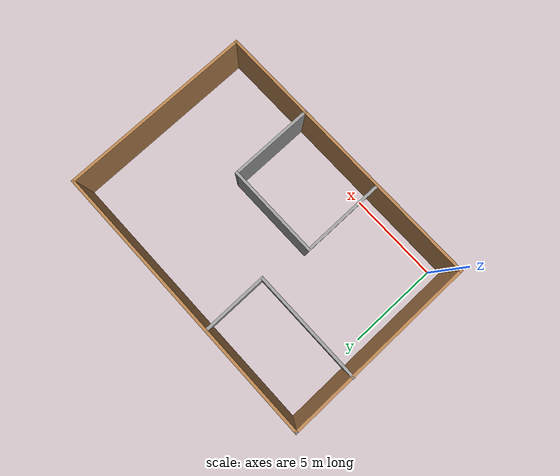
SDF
<?xml version='1.0'?>
<sdf version='1.6'>
  <model name='sparse_house'>
    <pose frame=''>7.23525 4.75 0 0 -0 0</pose>
    <link name='Wall_0'>
      <collision name='Wall_0_Collision'>
        <geometry>
          <box>
            <size>15.65 0.15 2.5</size>
          </box>
        </geometry>
        <pose frame=''>0 0 1.25 0 -0 0</pose>
      </collision>
      <visual name='Wall_0_Visual'>
        <pose frame=''>0 0 1.25 0 -0 0</pose>
        <geometry>
          <box>
            <size>15.65 0.15 2.5</size>
          </box>
        </geometry>
        <material>
          <script>
            <uri>file://media/materials/scripts/gazebo.material</uri>
            <name>Gazebo/Wood</name>
          </script>
          <ambient>1 1 1 1</ambient>
        </material>
        <meta>
          <layer>0</layer>
        </meta>
      </visual>
      <pose frame=''>0.014747 5.25 0 0 -0 0</pose>
    </link>
    <link name='Wall_1'>
      <collision name='Wall_1_Collision'>
        <geometry>
          <box>
            <size>10.65 0.15 2.5</size>
          </box>
        </geometry>
        <pose frame=''>0 0 1.25 0 -0 0</pose>
      </collision>
      <visual name='Wall_1_Visual'>
        <pose frame=''>0 0 1.25 0 -0 0</pose>
        <geometry>
          <box>
            <size>10.65 0.15 2.5</size>
          </box>
        </geometry>
        <material>
          <script>
            <uri>file://media/materials/scripts/gazebo.material</uri>
            <name>Gazebo/Wood</name>
          </script>
          <ambient>1 1 1 1</ambient>
        </material>
        <meta>
          <layer>0</layer>
        </meta>
      </visual>
      <pose frame=''>7.76475 -0 0 0 -0 -1.5708</pose>
    </link>
    <link name='Wall_11'>
      <collision name='Wall_11_Collision'>
        <geometry>
          <box>
            <size>6.1795 0.15 2.5</size>
          </box>
        </geometry>
        <pose frame=''>0 0 1.25 0 -0 0</pose>
      </collision>
      <visual name='Wall_11_Visual'>
        <pose frame=''>0 0 1.25 0 -0 0</pose>
        <geometry>
          <box>
            <size>6.1795 0.15 2.5</size>
          </box>
        </geometry>
        <material>
          <script>
            <uri>file://media/materials/scripts/gazebo.material</uri>
            <name>Gazebo/Grey</name>
          </script>
          <ambient>1 1 1 1</ambient>
        </material>
        <meta>
          <layer>0</layer>
        </meta>
      </visual>
      <pose frame=''>-4.75 1.75 0 0 -0 0</pose>
    </link>
    <link name='Wall_12'>
      <collision name='Wall_12_Collision'>
        <geometry>
          <box>
            <size>3.65 0.15 2.5</size>
          </box>
        </geometry>
        <pose frame=''>0 0 1.25 0 -0 0</pose>
      </collision>
      <visual name='Wall_12_Visual'>
        <pose frame=''>0 0 1.25 0 -0 0</pose>
        <geometry>
          <box>
            <size>3.65 0.15 2.5</size>
          </box>
        </geometry>
        <material>
          <script>
            <uri>file://media/materials/scripts/gazebo.material</uri>
            <name>Gazebo/Grey</name>
          </script>
          <ambient>1 1 1 1</ambient>
        </material>
        <meta>
          <layer>0</layer>
        </meta>
      </visual>
      <pose frame=''>-1.73525 3.5 0 0 -0 1.5708</pose>
    </link>
    <link name='Wall_2'>
      <collision name='Wall_2_Collision'>
        <geometry>
          <box>
            <size>15.65 0.15 2.5</size>
          </box>
        </geometry>
        <pose frame=''>0 0 1.25 0 -0 0</pose>
      </collision>
      <visual name='Wall_2_Visual'>
        <pose frame=''>0 0 1.25 0 -0 0</pose>
        <geometry>
          <box>
            <size>15.65 0.15 2.5</size>
          </box>
        </geometry>
        <material>
          <script>
            <uri>file://media/materials/scripts/gazebo.material</uri>
            <name>Gazebo/Wood</name>
          </script>
          <ambient>1 1 1 1</ambient>
        </material>
        <meta>
          <layer>0</layer>
        </meta>
      </visual>
      <pose frame=''>0.014747 -5.25 0 0 -0 3.14159</pose>
    </link>
    <link name='Wall_3'>
      <collision name='Wall_3_Collision'>
        <geometry>
          <box>
            <size>10.65 0.15 2.5</size>
          </box>
        </geometry>
        <pose frame=''>0 0 1.25 0 -0 0</pose>
      </collision>
      <visual name='Wall_3_Visual'>
        <pose frame=''>0 0 1.25 0 -0 0</pose>
        <geometry>
          <box>
            <size>10.65 0.15 2.5</size>
          </box>
        </geometry>
        <material>
          <script>
            <uri>file://media/materials/scripts/gazebo.material</uri>
            <name>Gazebo/Wood</name>
          </script>
          <ambient>1 1 1 1</ambient>
        </material>
        <meta>
          <layer>0</layer>
        </meta>
      </visual>
      <pose frame=''>-7.73525 -0 0 0 -0 1.5708</pose>
    </link>
    <link name='Wall_4'>
      <collision name='Wall_4_Collision'>
        <geometry>
          <box>
            <size>0.15 0.15 2.5</size>
          </box>
        </geometry>
        <pose frame=''>0 0 1.25 0 -0 0</pose>
      </collision>
      <visual name='Wall_4_Visual'>
        <pose frame=''>0 0 1.25 0 -0 0</pose>
        <geometry>
          <box>
            <size>0.15 0.15 2.5</size>
          </box>
        </geometry>
        <material>
          <script>
            <uri>file://media/materials/scripts/gazebo.material</uri>
            <name>Gazebo/Grey</name>
          </script>
          <ambient>1 1 1 1</ambient>
        </material>
        <meta>
          <layer>0</layer>
        </meta>
      </visual>
      <pose frame=''>-7.73525 5.25 0 0 -0 0</pose>
    </link>
    <link name='Wall_6'>
      <collision name='Wall_6_Collision'>
        <geometry>
          <box>
            <size>4.65 0.15 2.5</size>
          </box>
        </geometry>
        <pose frame=''>0 0 1.25 0 -0 0</pose>
      </collision>
      <visual name='Wall_6_Visual'>
        <pose frame=''>0 0 1.25 0 -0 0</pose>
        <geometry>
          <box>
            <size>4.65 0.15 2.5</size>
          </box>
        </geometry>
        <material>
          <script>
            <uri>file://media/materials/scripts/gazebo.material</uri>
            <name>Gazebo/Grey</name>
          </script>
          <ambient>1 1 1 1</ambient>
        </material>
        <meta>
          <layer>0</layer>
        </meta>
      </visual>
      <pose frame=''>-2.23525 -3 0 0 -0 1.5708</pose>
    </link>
    <link name='Wall_7'>
      <collision name='Wall_7_Collision'>
        <geometry>
          <box>
            <size>5.15 0.15 2.5</size>
          </box>
        </geometry>
        <pose frame=''>0 0 1.25 0 -0 0</pose>
      </collision>
      <visual name='Wall_7_Visual'>
        <pose frame=''>0 0 1.25 0 -0 0</pose>
        <geometry>
          <box>
            <size>5.15 0.15 2.5</size>
          </box>
        </geometry>
        <material>
          <script>
            <uri>file://media/materials/scripts/gazebo.material</uri>
            <name>Gazebo/Grey</name>
          </script>
          <ambient>1 1 1 1</ambient>
        </material>
        <meta>
          <layer>0</layer>
        </meta>
      </visual>
      <pose frame=''>0.264747 -0.75 0 0 -0 0</pose>
    </link>
    <link name='Wall_8'>
      <collision name='Wall_8_Collision'>
        <geometry>
          <box>
            <size>4.65 0.15 2.5</size>
          </box>
        </geometry>
        <pose frame=''>0 0 1.25 0 -0 0</pose>
      </collision>
      <visual name='Wall_8_Visual'>
        <pose frame=''>0 0 1.25 0 -0 0</pose>
        <geometry>
          <box>
            <size>4.65 0.15 2.5</size>
          </box>
        </geometry>
        <material>
          <script>
            <uri>file://media/materials/scripts/gazebo.material</uri>
            <name>Gazebo/Grey</name>
          </script>
          <ambient>1 1 1 1</ambient>
        </material>
        <meta>
          <layer>0</layer>
        </meta>
      </visual>
      <pose frame=''>2.76475 -3 0 0 -0 -1.5708</pose>
    </link>
    <link name='Wall_9'>
      <collision name='Wall_9_Collision'>
        <geometry>
          <box>
            <size>0.15 0.15 2.5</size>
          </box>
        </geometry>
        <pose frame=''>0 0 1.25 0 -0 0</pose>
      </collision>
      <visual name='Wall_9_Visual'>
        <pose frame=''>0 0 1.25 0 -0 0</pose>
        <geometry>
          <box>
            <size>0.15 0.15 2.5</size>
          </box>
        </geometry>
        <material>
          <script>
            <uri>file://media/materials/scripts/gazebo.material</uri>
            <name>Gazebo/Grey</name>
          </script>
          <ambient>1 1 1 1</ambient>
        </material>
        <meta>
          <layer>0</layer>
        </meta>
      </visual>
      <pose frame=''>2.76475 -5.25 0 0 -0 0</pose>
    </link>
    <static>1</static>
  </model>
</sdf>
